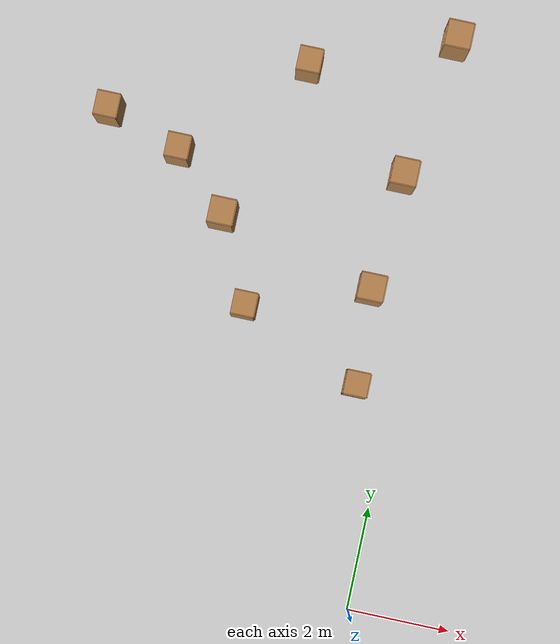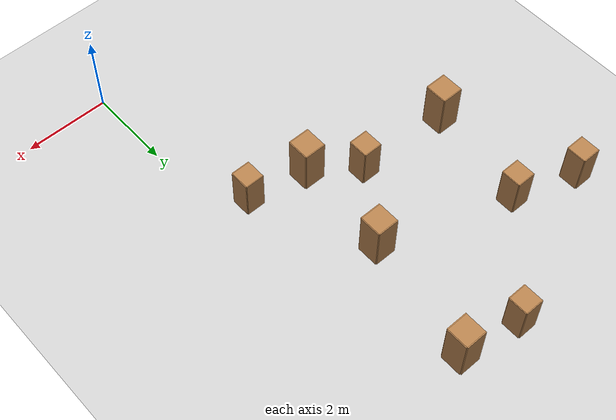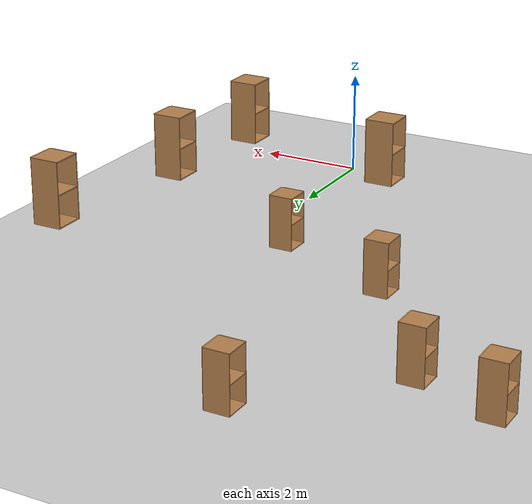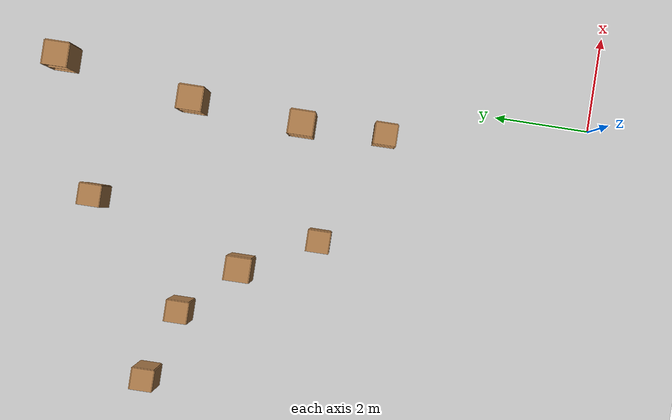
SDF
<sdf version="1.7">
 <world name="default">
  <model name="ground_plane">
   <static>1</static>
   <link name="link">
    <collision name="collision">
     <geometry><plane><normal>0 0 1</normal><size>100 100</size></plane></geometry>
     <surface><friction><ode><mu>100</mu><mu2>50</mu2></ode></friction></surface>
    </collision>
    <visual name="visual">
     <cast_shadows>0</cast_shadows>
     <geometry><plane><normal>0 0 1</normal><size>100 100</size></plane></geometry>
     <material>
      <script><uri>file://media/materials/scripts/gazebo.material</uri><name>Gazebo/Grey</name></script>
     </material>
    </visual>
   </link>
  </model>
  <model name="cabinet_0">
   <static>1</static>
   <link name="cabinet_bottom_plate">
    <inertial>
     <pose>0 0 -1 0 -0 0</pose>
     <inertia><ixx>2.05</ixx><ixy>0</ixy><ixz>0</ixz><iyy>2.05</iyy><iyz>0</iyz><izz>2.05</izz></inertia>
     <mass>25</mass>
    </inertial>
    <collision name="cabinet_bottom_plate_geom">
     <pose>0 0 0.01 0 -0 0</pose>
     <geometry><box><size>0.45 0.45 0.02</size></box></geometry>
    </collision>
    <visual name="cabinet_bottom_plate_geom_visual">
     <pose>0 0 0.01 0 -0 0</pose>
     <geometry><box><size>0.45 0.45 0.02</size></box></geometry>
     <material>
      <script><uri>file://media/materials/scripts/gazebo.material</uri><name>Gazebo/Wood</name></script>
     </material>
    </visual>
    <collision name="cabinet_bottom_plate_geom_cabinet_back_plate">
     <pose>0.235 0 0.51 0 -0 0</pose>
     <geometry><box><size>0.02 0.45 1.02</size></box></geometry>
    </collision>
    <visual name="cabinet_bottom_plate_geom_cabinet_back_plate_visual">
     <pose>0.235 0 0.51 0 -0 0</pose>
     <geometry><box><size>0.02 0.45 1.02</size></box></geometry>
     <material>
      <script><uri>file://media/materials/scripts/gazebo.material</uri><name>Gazebo/Wood</name></script>
     </material>
    </visual>
    <collision name="cabinet_bottom_plate_geom_cabinet_left_plate">
     <pose>0 0.235 0.51 0 -0 0</pose>
     <geometry><box><size>0.45 0.02 1.02</size></box></geometry>
    </collision>
    <visual name="cabinet_bottom_plate_geom_cabinet_left_plate_visual">
     <pose>0 0.235 0.51 0 -0 0</pose>
     <geometry><box><size>0.45 0.02 1.02</size></box></geometry>
     <material>
      <script><uri>file://media/materials/scripts/gazebo.material</uri><name>Gazebo/Wood</name></script>
     </material>
    </visual>
    <collision name="cabinet_bottom_plate_geom_cabinet_middle_plate">
     <pose>0 0 0.51 0 -0 0</pose>
     <geometry><box><size>0.45 0.45 0.02</size></box></geometry>
    </collision>
    <visual name="cabinet_bottom_plate_geom_cabinet_middle_plate_visual">
     <pose>0 0 0.51 0 -0 0</pose>
     <geometry><box><size>0.45 0.45 0.02</size></box></geometry>
     <material>
      <script><uri>file://media/materials/scripts/gazebo.material</uri><name>Gazebo/Wood</name></script>
     </material>
    </visual>
    <collision name="cabinet_bottom_plate_geom_cabinet_right_plate">
     <pose>0 -0.235 0.51 0 -0 0</pose>
     <geometry><box><size>0.45 0.02 1.02</size></box></geometry>
    </collision>
    <visual name="cabinet_bottom_plate_geom_cabinet_right_plate_visual">
     <pose>0 -0.235 0.51 0 -0 0</pose>
     <geometry><box><size>0.45 0.02 1.02</size></box></geometry>
     <material>
      <script><uri>file://media/materials/scripts/gazebo.material</uri><name>Gazebo/Wood</name></script>
     </material>
    </visual>
    <collision name="cabinet_bottom_plate_geom_cabinet_top_plate">
     <pose>0 0 1.01 0 -0 0</pose>
     <geometry><box><size>0.45 0.45 0.02</size></box></geometry>
    </collision>
    <visual name="cabinet_bottom_plate_geom_cabinet_top_plate_visual">
     <pose>0 0 1.01 0 -0 0</pose>
     <geometry><box><size>0.45 0.45 0.02</size></box></geometry>
     <material>
      <script><uri>file://media/materials/scripts/gazebo.material</uri><name>Gazebo/Wood</name></script>
     </material>
    </visual>
   </link>
   <pose>-3.16473 5.33398 0 0 -0 0</pose>
  </model>
  <model name="cabinet_1">
   <static>1</static>
   <link name="cabinet_bottom_plate">
    <inertial>
     <pose>0 0 -1 0 -0 0</pose>
     <inertia><ixx>2.05</ixx><ixy>0</ixy><ixz>0</ixz><iyy>2.05</iyy><iyz>0</iyz><izz>2.05</izz></inertia>
     <mass>25</mass>
    </inertial>
    <collision name="cabinet_bottom_plate_geom">
     <pose>0 0 0.01 0 -0 0</pose>
     <geometry><box><size>0.45 0.45 0.02</size></box></geometry>
    </collision>
    <visual name="cabinet_bottom_plate_geom_visual">
     <pose>0 0 0.01 0 -0 0</pose>
     <geometry><box><size>0.45 0.45 0.02</size></box></geometry>
     <material>
      <script><uri>file://media/materials/scripts/gazebo.material</uri><name>Gazebo/Wood</name></script>
     </material>
    </visual>
    <collision name="cabinet_bottom_plate_geom_cabinet_back_plate">
     <pose>0.235 0 0.51 0 -0 0</pose>
     <geometry><box><size>0.02 0.45 1.02</size></box></geometry>
    </collision>
    <visual name="cabinet_bottom_plate_geom_cabinet_back_plate_visual">
     <pose>0.235 0 0.51 0 -0 0</pose>
     <geometry><box><size>0.02 0.45 1.02</size></box></geometry>
     <material>
      <script><uri>file://media/materials/scripts/gazebo.material</uri><name>Gazebo/Wood</name></script>
     </material>
    </visual>
    <collision name="cabinet_bottom_plate_geom_cabinet_left_plate">
     <pose>0 0.235 0.51 0 -0 0</pose>
     <geometry><box><size>0.45 0.02 1.02</size></box></geometry>
    </collision>
    <visual name="cabinet_bottom_plate_geom_cabinet_left_plate_visual">
     <pose>0 0.235 0.51 0 -0 0</pose>
     <geometry><box><size>0.45 0.02 1.02</size></box></geometry>
     <material>
      <script><uri>file://media/materials/scripts/gazebo.material</uri><name>Gazebo/Wood</name></script>
     </material>
    </visual>
    <collision name="cabinet_bottom_plate_geom_cabinet_middle_plate">
     <pose>0 0 0.51 0 -0 0</pose>
     <geometry><box><size>0.45 0.45 0.02</size></box></geometry>
    </collision>
    <visual name="cabinet_bottom_plate_geom_cabinet_middle_plate_visual">
     <pose>0 0 0.51 0 -0 0</pose>
     <geometry><box><size>0.45 0.45 0.02</size></box></geometry>
     <material>
      <script><uri>file://media/materials/scripts/gazebo.material</uri><name>Gazebo/Wood</name></script>
     </material>
    </visual>
    <collision name="cabinet_bottom_plate_geom_cabinet_right_plate">
     <pose>0 -0.235 0.51 0 -0 0</pose>
     <geometry><box><size>0.45 0.02 1.02</size></box></geometry>
    </collision>
    <visual name="cabinet_bottom_plate_geom_cabinet_right_plate_visual">
     <pose>0 -0.235 0.51 0 -0 0</pose>
     <geometry><box><size>0.45 0.02 1.02</size></box></geometry>
     <material>
      <script><uri>file://media/materials/scripts/gazebo.material</uri><name>Gazebo/Wood</name></script>
     </material>
    </visual>
    <collision name="cabinet_bottom_plate_geom_cabinet_top_plate">
     <pose>0 0 1.01 0 -0 0</pose>
     <geometry><box><size>0.45 0.45 0.02</size></box></geometry>
    </collision>
    <visual name="cabinet_bottom_plate_geom_cabinet_top_plate_visual">
     <pose>0 0 1.01 0 -0 0</pose>
     <geometry><box><size>0.45 0.45 0.02</size></box></geometry>
     <material>
      <script><uri>file://media/materials/scripts/gazebo.material</uri><name>Gazebo/Wood</name></script>
     </material>
    </visual>
   </link>
   <pose>-5.03294 8.00507 0 0 -0 0</pose>
  </model>
  <model name="cabinet_2">
   <static>1</static>
   <link name="cabinet_bottom_plate">
    <inertial>
     <pose>0 0 -1 0 -0 0</pose>
     <inertia><ixx>2.05</ixx><ixy>0</ixy><ixz>0</ixz><iyy>2.05</iyy><iyz>0</iyz><izz>2.05</izz></inertia>
     <mass>25</mass>
    </inertial>
    <collision name="cabinet_bottom_plate_geom">
     <pose>0 0 0.01 0 -0 0</pose>
     <geometry><box><size>0.45 0.45 0.02</size></box></geometry>
    </collision>
    <visual name="cabinet_bottom_plate_geom_visual">
     <pose>0 0 0.01 0 -0 0</pose>
     <geometry><box><size>0.45 0.45 0.02</size></box></geometry>
     <material>
      <script><uri>file://media/materials/scripts/gazebo.material</uri><name>Gazebo/Wood</name></script>
     </material>
    </visual>
    <collision name="cabinet_bottom_plate_geom_cabinet_back_plate">
     <pose>0.235 0 0.51 0 -0 0</pose>
     <geometry><box><size>0.02 0.45 1.02</size></box></geometry>
    </collision>
    <visual name="cabinet_bottom_plate_geom_cabinet_back_plate_visual">
     <pose>0.235 0 0.51 0 -0 0</pose>
     <geometry><box><size>0.02 0.45 1.02</size></box></geometry>
     <material>
      <script><uri>file://media/materials/scripts/gazebo.material</uri><name>Gazebo/Wood</name></script>
     </material>
    </visual>
    <collision name="cabinet_bottom_plate_geom_cabinet_left_plate">
     <pose>0 0.235 0.51 0 -0 0</pose>
     <geometry><box><size>0.45 0.02 1.02</size></box></geometry>
    </collision>
    <visual name="cabinet_bottom_plate_geom_cabinet_left_plate_visual">
     <pose>0 0.235 0.51 0 -0 0</pose>
     <geometry><box><size>0.45 0.02 1.02</size></box></geometry>
     <material>
      <script><uri>file://media/materials/scripts/gazebo.material</uri><name>Gazebo/Wood</name></script>
     </material>
    </visual>
    <collision name="cabinet_bottom_plate_geom_cabinet_middle_plate">
     <pose>0 0 0.51 0 -0 0</pose>
     <geometry><box><size>0.45 0.45 0.02</size></box></geometry>
    </collision>
    <visual name="cabinet_bottom_plate_geom_cabinet_middle_plate_visual">
     <pose>0 0 0.51 0 -0 0</pose>
     <geometry><box><size>0.45 0.45 0.02</size></box></geometry>
     <material>
      <script><uri>file://media/materials/scripts/gazebo.material</uri><name>Gazebo/Wood</name></script>
     </material>
    </visual>
    <collision name="cabinet_bottom_plate_geom_cabinet_right_plate">
     <pose>0 -0.235 0.51 0 -0 0</pose>
     <geometry><box><size>0.45 0.02 1.02</size></box></geometry>
    </collision>
    <visual name="cabinet_bottom_plate_geom_cabinet_right_plate_visual">
     <pose>0 -0.235 0.51 0 -0 0</pose>
     <geometry><box><size>0.45 0.02 1.02</size></box></geometry>
     <material>
      <script><uri>file://media/materials/scripts/gazebo.material</uri><name>Gazebo/Wood</name></script>
     </material>
    </visual>
    <collision name="cabinet_bottom_plate_geom_cabinet_top_plate">
     <pose>0 0 1.01 0 -0 0</pose>
     <geometry><box><size>0.45 0.45 0.02</size></box></geometry>
    </collision>
    <visual name="cabinet_bottom_plate_geom_cabinet_top_plate_visual">
     <pose>0 0 1.01 0 -0 0</pose>
     <geometry><box><size>0.45 0.45 0.02</size></box></geometry>
     <material>
      <script><uri>file://media/materials/scripts/gazebo.material</uri><name>Gazebo/Wood</name></script>
     </material>
    </visual>
   </link>
   <pose>-0.759244 4.29261 0 0 -0 0</pose>
  </model>
  <model name="cabinet_3">
   <static>1</static>
   <link name="cabinet_bottom_plate">
    <inertial>
     <pose>0 0 -1 0 -0 0</pose>
     <inertia><ixx>2.05</ixx><ixy>0</ixy><ixz>0</ixz><iyy>2.05</iyy><iyz>0</iyz><izz>2.05</izz></inertia>
     <mass>25</mass>
    </inertial>
    <collision name="cabinet_bottom_plate_geom">
     <pose>0 0 0.01 0 -0 0</pose>
     <geometry><box><size>0.45 0.45 0.02</size></box></geometry>
    </collision>
    <visual name="cabinet_bottom_plate_geom_visual">
     <pose>0 0 0.01 0 -0 0</pose>
     <geometry><box><size>0.45 0.45 0.02</size></box></geometry>
     <material>
      <script><uri>file://media/materials/scripts/gazebo.material</uri><name>Gazebo/Wood</name></script>
     </material>
    </visual>
    <collision name="cabinet_bottom_plate_geom_cabinet_back_plate">
     <pose>0.235 0 0.51 0 -0 0</pose>
     <geometry><box><size>0.02 0.45 1.02</size></box></geometry>
    </collision>
    <visual name="cabinet_bottom_plate_geom_cabinet_back_plate_visual">
     <pose>0.235 0 0.51 0 -0 0</pose>
     <geometry><box><size>0.02 0.45 1.02</size></box></geometry>
     <material>
      <script><uri>file://media/materials/scripts/gazebo.material</uri><name>Gazebo/Wood</name></script>
     </material>
    </visual>
    <collision name="cabinet_bottom_plate_geom_cabinet_left_plate">
     <pose>0 0.235 0.51 0 -0 0</pose>
     <geometry><box><size>0.45 0.02 1.02</size></box></geometry>
    </collision>
    <visual name="cabinet_bottom_plate_geom_cabinet_left_plate_visual">
     <pose>0 0.235 0.51 0 -0 0</pose>
     <geometry><box><size>0.45 0.02 1.02</size></box></geometry>
     <material>
      <script><uri>file://media/materials/scripts/gazebo.material</uri><name>Gazebo/Wood</name></script>
     </material>
    </visual>
    <collision name="cabinet_bottom_plate_geom_cabinet_middle_plate">
     <pose>0 0 0.51 0 -0 0</pose>
     <geometry><box><size>0.45 0.45 0.02</size></box></geometry>
    </collision>
    <visual name="cabinet_bottom_plate_geom_cabinet_middle_plate_visual">
     <pose>0 0 0.51 0 -0 0</pose>
     <geometry><box><size>0.45 0.45 0.02</size></box></geometry>
     <material>
      <script><uri>file://media/materials/scripts/gazebo.material</uri><name>Gazebo/Wood</name></script>
     </material>
    </visual>
    <collision name="cabinet_bottom_plate_geom_cabinet_right_plate">
     <pose>0 -0.235 0.51 0 -0 0</pose>
     <geometry><box><size>0.45 0.02 1.02</size></box></geometry>
    </collision>
    <visual name="cabinet_bottom_plate_geom_cabinet_right_plate_visual">
     <pose>0 -0.235 0.51 0 -0 0</pose>
     <geometry><box><size>0.45 0.02 1.02</size></box></geometry>
     <material>
      <script><uri>file://media/materials/scripts/gazebo.material</uri><name>Gazebo/Wood</name></script>
     </material>
    </visual>
    <collision name="cabinet_bottom_plate_geom_cabinet_top_plate">
     <pose>0 0 1.01 0 -0 0</pose>
     <geometry><box><size>0.45 0.45 0.02</size></box></geometry>
    </collision>
    <visual name="cabinet_bottom_plate_geom_cabinet_top_plate_visual">
     <pose>0 0 1.01 0 -0 0</pose>
     <geometry><box><size>0.45 0.45 0.02</size></box></geometry>
     <material>
      <script><uri>file://media/materials/scripts/gazebo.material</uri><name>Gazebo/Wood</name></script>
     </material>
    </visual>
   </link>
   <pose>-6.52137 8.49952 0 0 -0 0</pose>
  </model>
  <model name="cabinet_clone">
   <static>1</static>
   <link name="cabinet_bottom_plate">
    <inertial>
     <pose>0 0 -1 0 -0 0</pose>
     <inertia><ixx>2.05</ixx><ixy>0</ixy><ixz>0</ixz><iyy>2.05</iyy><iyz>0</iyz><izz>2.05</izz></inertia>
     <mass>25</mass>
    </inertial>
    <collision name="cabinet_bottom_plate_geom">
     <pose>0 0 0.01 0 -0 0</pose>
     <geometry><box><size>0.45 0.45 0.02</size></box></geometry>
    </collision>
    <visual name="cabinet_bottom_plate_geom_visual">
     <pose>0 0 0.01 0 -0 0</pose>
     <geometry><box><size>0.45 0.45 0.02</size></box></geometry>
     <material>
      <script><uri>file://media/materials/scripts/gazebo.material</uri><name>Gazebo/Wood</name></script>
     </material>
    </visual>
    <collision name="cabinet_bottom_plate_geom_cabinet_back_plate">
     <pose>0.235 0 0.51 0 -0 0</pose>
     <geometry><box><size>0.02 0.45 1.02</size></box></geometry>
    </collision>
    <visual name="cabinet_bottom_plate_geom_cabinet_back_plate_visual">
     <pose>0.235 0 0.51 0 -0 0</pose>
     <geometry><box><size>0.02 0.45 1.02</size></box></geometry>
     <material>
      <script><uri>file://media/materials/scripts/gazebo.material</uri><name>Gazebo/Wood</name></script>
     </material>
    </visual>
    <collision name="cabinet_bottom_plate_geom_cabinet_left_plate">
     <pose>0 0.235 0.51 0 -0 0</pose>
     <geometry><box><size>0.45 0.02 1.02</size></box></geometry>
    </collision>
    <visual name="cabinet_bottom_plate_geom_cabinet_left_plate_visual">
     <pose>0 0.235 0.51 0 -0 0</pose>
     <geometry><box><size>0.45 0.02 1.02</size></box></geometry>
     <material>
      <script><uri>file://media/materials/scripts/gazebo.material</uri><name>Gazebo/Wood</name></script>
     </material>
    </visual>
    <collision name="cabinet_bottom_plate_geom_cabinet_middle_plate">
     <pose>0 0 0.51 0 -0 0</pose>
     <geometry><box><size>0.45 0.45 0.02</size></box></geometry>
    </collision>
    <visual name="cabinet_bottom_plate_geom_cabinet_middle_plate_visual">
     <pose>0 0 0.51 0 -0 0</pose>
     <geometry><box><size>0.45 0.45 0.02</size></box></geometry>
     <material>
      <script><uri>file://media/materials/scripts/gazebo.material</uri><name>Gazebo/Wood</name></script>
     </material>
    </visual>
    <collision name="cabinet_bottom_plate_geom_cabinet_right_plate">
     <pose>0 -0.235 0.51 0 -0 0</pose>
     <geometry><box><size>0.45 0.02 1.02</size></box></geometry>
    </collision>
    <visual name="cabinet_bottom_plate_geom_cabinet_right_plate_visual">
     <pose>0 -0.235 0.51 0 -0 0</pose>
     <geometry><box><size>0.45 0.02 1.02</size></box></geometry>
     <material>
      <script><uri>file://media/materials/scripts/gazebo.material</uri><name>Gazebo/Wood</name></script>
     </material>
    </visual>
    <collision name="cabinet_bottom_plate_geom_cabinet_top_plate">
     <pose>0 0 1.01 0 -0 0</pose>
     <geometry><box><size>0.45 0.45 0.02</size></box></geometry>
    </collision>
    <visual name="cabinet_bottom_plate_geom_cabinet_top_plate_visual">
     <pose>0 0 1.01 0 -0 0</pose>
     <geometry><box><size>0.45 0.45 0.02</size></box></geometry>
     <material>
      <script><uri>file://media/materials/scripts/gazebo.material</uri><name>Gazebo/Wood</name></script>
     </material>
    </visual>
   </link>
   <pose>-2.92147 10.1436 0 0 -0 0</pose>
  </model>
  <model name="cabinet_4">
   <static>1</static>
   <link name="cabinet_bottom_plate">
    <inertial>
     <pose>0 0 -1 0 -0 0</pose>
     <inertia><ixx>2.05</ixx><ixy>0</ixy><ixz>0</ixz><iyy>2.05</iyy><iyz>0</iyz><izz>2.05</izz></inertia>
     <mass>25</mass>
    </inertial>
    <collision name="cabinet_bottom_plate_geom">
     <pose>0 0 0.01 0 -0 0</pose>
     <geometry><box><size>0.45 0.45 0.02</size></box></geometry>
    </collision>
    <visual name="cabinet_bottom_plate_geom_visual">
     <pose>0 0 0.01 0 -0 0</pose>
     <geometry><box><size>0.45 0.45 0.02</size></box></geometry>
     <material>
      <script><uri>file://media/materials/scripts/gazebo.material</uri><name>Gazebo/Wood</name></script>
     </material>
    </visual>
    <collision name="cabinet_bottom_plate_geom_cabinet_back_plate">
     <pose>0.235 0 0.51 0 -0 0</pose>
     <geometry><box><size>0.02 0.45 1.02</size></box></geometry>
    </collision>
    <visual name="cabinet_bottom_plate_geom_cabinet_back_plate_visual">
     <pose>0.235 0 0.51 0 -0 0</pose>
     <geometry><box><size>0.02 0.45 1.02</size></box></geometry>
     <material>
      <script><uri>file://media/materials/scripts/gazebo.material</uri><name>Gazebo/Wood</name></script>
     </material>
    </visual>
    <collision name="cabinet_bottom_plate_geom_cabinet_left_plate">
     <pose>0 0.235 0.51 0 -0 0</pose>
     <geometry><box><size>0.45 0.02 1.02</size></box></geometry>
    </collision>
    <visual name="cabinet_bottom_plate_geom_cabinet_left_plate_visual">
     <pose>0 0.235 0.51 0 -0 0</pose>
     <geometry><box><size>0.45 0.02 1.02</size></box></geometry>
     <material>
      <script><uri>file://media/materials/scripts/gazebo.material</uri><name>Gazebo/Wood</name></script>
     </material>
    </visual>
    <collision name="cabinet_bottom_plate_geom_cabinet_middle_plate">
     <pose>0 0 0.51 0 -0 0</pose>
     <geometry><box><size>0.45 0.45 0.02</size></box></geometry>
    </collision>
    <visual name="cabinet_bottom_plate_geom_cabinet_middle_plate_visual">
     <pose>0 0 0.51 0 -0 0</pose>
     <geometry><box><size>0.45 0.45 0.02</size></box></geometry>
     <material>
      <script><uri>file://media/materials/scripts/gazebo.material</uri><name>Gazebo/Wood</name></script>
     </material>
    </visual>
    <collision name="cabinet_bottom_plate_geom_cabinet_right_plate">
     <pose>0 -0.235 0.51 0 -0 0</pose>
     <geometry><box><size>0.45 0.02 1.02</size></box></geometry>
    </collision>
    <visual name="cabinet_bottom_plate_geom_cabinet_right_plate_visual">
     <pose>0 -0.235 0.51 0 -0 0</pose>
     <geometry><box><size>0.45 0.02 1.02</size></box></geometry>
     <material>
      <script><uri>file://media/materials/scripts/gazebo.material</uri><name>Gazebo/Wood</name></script>
     </material>
    </visual>
    <collision name="cabinet_bottom_plate_geom_cabinet_top_plate">
     <pose>0 0 1.01 0 -0 0</pose>
     <geometry><box><size>0.45 0.45 0.02</size></box></geometry>
    </collision>
    <visual name="cabinet_bottom_plate_geom_cabinet_top_plate_visual">
     <pose>0 0 1.01 0 -0 0</pose>
     <geometry><box><size>0.45 0.45 0.02</size></box></geometry>
     <material>
      <script><uri>file://media/materials/scripts/gazebo.material</uri><name>Gazebo/Wood</name></script>
     </material>
    </visual>
   </link>
   <pose>-0.807794 8.02301 2.58949 0 -0 0</pose>
  </model>
  <model name="cabinet_4_clone_0">
   <static>1</static>
   <link name="cabinet_bottom_plate">
    <inertial>
     <pose>0 0 -1 0 -0 0</pose>
     <inertia><ixx>2.05</ixx><ixy>0</ixy><ixz>0</ixz><iyy>2.05</iyy><iyz>0</iyz><izz>2.05</izz></inertia>
     <mass>25</mass>
    </inertial>
    <collision name="cabinet_bottom_plate_geom">
     <pose>0 0 0.01 0 -0 0</pose>
     <geometry><box><size>0.45 0.45 0.02</size></box></geometry>
    </collision>
    <visual name="cabinet_bottom_plate_geom_visual">
     <pose>0 0 0.01 0 -0 0</pose>
     <geometry><box><size>0.45 0.45 0.02</size></box></geometry>
     <material>
      <script><uri>file://media/materials/scripts/gazebo.material</uri><name>Gazebo/Wood</name></script>
     </material>
    </visual>
    <collision name="cabinet_bottom_plate_geom_cabinet_back_plate">
     <pose>0.235 0 0.51 0 -0 0</pose>
     <geometry><box><size>0.02 0.45 1.02</size></box></geometry>
    </collision>
    <visual name="cabinet_bottom_plate_geom_cabinet_back_plate_visual">
     <pose>0.235 0 0.51 0 -0 0</pose>
     <geometry><box><size>0.02 0.45 1.02</size></box></geometry>
     <material>
      <script><uri>file://media/materials/scripts/gazebo.material</uri><name>Gazebo/Wood</name></script>
     </material>
    </visual>
    <collision name="cabinet_bottom_plate_geom_cabinet_left_plate">
     <pose>0 0.235 0.51 0 -0 0</pose>
     <geometry><box><size>0.45 0.02 1.02</size></box></geometry>
    </collision>
    <visual name="cabinet_bottom_plate_geom_cabinet_left_plate_visual">
     <pose>0 0.235 0.51 0 -0 0</pose>
     <geometry><box><size>0.45 0.02 1.02</size></box></geometry>
     <material>
      <script><uri>file://media/materials/scripts/gazebo.material</uri><name>Gazebo/Wood</name></script>
     </material>
    </visual>
    <collision name="cabinet_bottom_plate_geom_cabinet_middle_plate">
     <pose>0 0 0.51 0 -0 0</pose>
     <geometry><box><size>0.45 0.45 0.02</size></box></geometry>
    </collision>
    <visual name="cabinet_bottom_plate_geom_cabinet_middle_plate_visual">
     <pose>0 0 0.51 0 -0 0</pose>
     <geometry><box><size>0.45 0.45 0.02</size></box></geometry>
     <material>
      <script><uri>file://media/materials/scripts/gazebo.material</uri><name>Gazebo/Wood</name></script>
     </material>
    </visual>
    <collision name="cabinet_bottom_plate_geom_cabinet_right_plate">
     <pose>0 -0.235 0.51 0 -0 0</pose>
     <geometry><box><size>0.45 0.02 1.02</size></box></geometry>
    </collision>
    <visual name="cabinet_bottom_plate_geom_cabinet_right_plate_visual">
     <pose>0 -0.235 0.51 0 -0 0</pose>
     <geometry><box><size>0.45 0.02 1.02</size></box></geometry>
     <material>
      <script><uri>file://media/materials/scripts/gazebo.material</uri><name>Gazebo/Wood</name></script>
     </material>
    </visual>
    <collision name="cabinet_bottom_plate_geom_cabinet_top_plate">
     <pose>0 0 1.01 0 -0 0</pose>
     <geometry><box><size>0.45 0.45 0.02</size></box></geometry>
    </collision>
    <visual name="cabinet_bottom_plate_geom_cabinet_top_plate_visual">
     <pose>0 0 1.01 0 -0 0</pose>
     <geometry><box><size>0.45 0.45 0.02</size></box></geometry>
     <material>
      <script><uri>file://media/materials/scripts/gazebo.material</uri><name>Gazebo/Wood</name></script>
     </material>
    </visual>
   </link>
   <pose>-3.79825 6.68311 2.58949 0 -0 0</pose>
  </model>
  <model name="cabinet_4_clone_2">
   <static>1</static>
   <link name="cabinet_bottom_plate">
    <inertial>
     <pose>0 0 -1 0 -0 0</pose>
     <inertia><ixx>2.05</ixx><ixy>0</ixy><ixz>0</ixz><iyy>2.05</iyy><iyz>0</iyz><izz>2.05</izz></inertia>
     <mass>25</mass>
    </inertial>
    <collision name="cabinet_bottom_plate_geom">
     <pose>0 0 0.01 0 -0 0</pose>
     <geometry><box><size>0.45 0.45 0.02</size></box></geometry>
    </collision>
    <visual name="cabinet_bottom_plate_geom_visual">
     <pose>0 0 0.01 0 -0 0</pose>
     <geometry><box><size>0.45 0.45 0.02</size></box></geometry>
     <material>
      <script><uri>file://media/materials/scripts/gazebo.material</uri><name>Gazebo/Wood</name></script>
     </material>
    </visual>
    <collision name="cabinet_bottom_plate_geom_cabinet_back_plate">
     <pose>0.235 0 0.51 0 -0 0</pose>
     <geometry><box><size>0.02 0.45 1.02</size></box></geometry>
    </collision>
    <visual name="cabinet_bottom_plate_geom_cabinet_back_plate_visual">
     <pose>0.235 0 0.51 0 -0 0</pose>
     <geometry><box><size>0.02 0.45 1.02</size></box></geometry>
     <material>
      <script><uri>file://media/materials/scripts/gazebo.material</uri><name>Gazebo/Wood</name></script>
     </material>
    </visual>
    <collision name="cabinet_bottom_plate_geom_cabinet_left_plate">
     <pose>0 0.235 0.51 0 -0 0</pose>
     <geometry><box><size>0.45 0.02 1.02</size></box></geometry>
    </collision>
    <visual name="cabinet_bottom_plate_geom_cabinet_left_plate_visual">
     <pose>0 0.235 0.51 0 -0 0</pose>
     <geometry><box><size>0.45 0.02 1.02</size></box></geometry>
     <material>
      <script><uri>file://media/materials/scripts/gazebo.material</uri><name>Gazebo/Wood</name></script>
     </material>
    </visual>
    <collision name="cabinet_bottom_plate_geom_cabinet_middle_plate">
     <pose>0 0 0.51 0 -0 0</pose>
     <geometry><box><size>0.45 0.45 0.02</size></box></geometry>
    </collision>
    <visual name="cabinet_bottom_plate_geom_cabinet_middle_plate_visual">
     <pose>0 0 0.51 0 -0 0</pose>
     <geometry><box><size>0.45 0.45 0.02</size></box></geometry>
     <material>
      <script><uri>file://media/materials/scripts/gazebo.material</uri><name>Gazebo/Wood</name></script>
     </material>
    </visual>
    <collision name="cabinet_bottom_plate_geom_cabinet_right_plate">
     <pose>0 -0.235 0.51 0 -0 0</pose>
     <geometry><box><size>0.45 0.02 1.02</size></box></geometry>
    </collision>
    <visual name="cabinet_bottom_plate_geom_cabinet_right_plate_visual">
     <pose>0 -0.235 0.51 0 -0 0</pose>
     <geometry><box><size>0.45 0.02 1.02</size></box></geometry>
     <material>
      <script><uri>file://media/materials/scripts/gazebo.material</uri><name>Gazebo/Wood</name></script>
     </material>
    </visual>
    <collision name="cabinet_bottom_plate_geom_cabinet_top_plate">
     <pose>0 0 1.01 0 -0 0</pose>
     <geometry><box><size>0.45 0.45 0.02</size></box></geometry>
    </collision>
    <visual name="cabinet_bottom_plate_geom_cabinet_top_plate_visual">
     <pose>0 0 1.01 0 -0 0</pose>
     <geometry><box><size>0.45 0.45 0.02</size></box></geometry>
     <material>
      <script><uri>file://media/materials/scripts/gazebo.material</uri><name>Gazebo/Wood</name></script>
     </material>
    </visual>
   </link>
   <pose>-0.951935 5.92676 2.58949 0 -0 0</pose>
  </model>
  <model name="cabinet_4_clone_3">
   <static>1</static>
   <link name="cabinet_bottom_plate">
    <inertial>
     <pose>0 0 -1 0 -0 0</pose>
     <inertia><ixx>2.05</ixx><ixy>0</ixy><ixz>0</ixz><iyy>2.05</iyy><iyz>0</iyz><izz>2.05</izz></inertia>
     <mass>25</mass>
    </inertial>
    <collision name="cabinet_bottom_plate_geom">
     <pose>0 0 0.01 0 -0 0</pose>
     <geometry><box><size>0.45 0.45 0.02</size></box></geometry>
    </collision>
    <visual name="cabinet_bottom_plate_geom_visual">
     <pose>0 0 0.01 0 -0 0</pose>
     <geometry><box><size>0.45 0.45 0.02</size></box></geometry>
     <material>
      <script><uri>file://media/materials/scripts/gazebo.material</uri><name>Gazebo/Wood</name></script>
     </material>
    </visual>
    <collision name="cabinet_bottom_plate_geom_cabinet_back_plate">
     <pose>0.235 0 0.51 0 -0 0</pose>
     <geometry><box><size>0.02 0.45 1.02</size></box></geometry>
    </collision>
    <visual name="cabinet_bottom_plate_geom_cabinet_back_plate_visual">
     <pose>0.235 0 0.51 0 -0 0</pose>
     <geometry><box><size>0.02 0.45 1.02</size></box></geometry>
     <material>
      <script><uri>file://media/materials/scripts/gazebo.material</uri><name>Gazebo/Wood</name></script>
     </material>
    </visual>
    <collision name="cabinet_bottom_plate_geom_cabinet_left_plate">
     <pose>0 0.235 0.51 0 -0 0</pose>
     <geometry><box><size>0.45 0.02 1.02</size></box></geometry>
    </collision>
    <visual name="cabinet_bottom_plate_geom_cabinet_left_plate_visual">
     <pose>0 0.235 0.51 0 -0 0</pose>
     <geometry><box><size>0.45 0.02 1.02</size></box></geometry>
     <material>
      <script><uri>file://media/materials/scripts/gazebo.material</uri><name>Gazebo/Wood</name></script>
     </material>
    </visual>
    <collision name="cabinet_bottom_plate_geom_cabinet_middle_plate">
     <pose>0 0 0.51 0 -0 0</pose>
     <geometry><box><size>0.45 0.45 0.02</size></box></geometry>
    </collision>
    <visual name="cabinet_bottom_plate_geom_cabinet_middle_plate_visual">
     <pose>0 0 0.51 0 -0 0</pose>
     <geometry><box><size>0.45 0.45 0.02</size></box></geometry>
     <material>
      <script><uri>file://media/materials/scripts/gazebo.material</uri><name>Gazebo/Wood</name></script>
     </material>
    </visual>
    <collision name="cabinet_bottom_plate_geom_cabinet_right_plate">
     <pose>0 -0.235 0.51 0 -0 0</pose>
     <geometry><box><size>0.45 0.02 1.02</size></box></geometry>
    </collision>
    <visual name="cabinet_bottom_plate_geom_cabinet_right_plate_visual">
     <pose>0 -0.235 0.51 0 -0 0</pose>
     <geometry><box><size>0.45 0.02 1.02</size></box></geometry>
     <material>
      <script><uri>file://media/materials/scripts/gazebo.material</uri><name>Gazebo/Wood</name></script>
     </material>
    </visual>
    <collision name="cabinet_bottom_plate_geom_cabinet_top_plate">
     <pose>0 0 1.01 0 -0 0</pose>
     <geometry><box><size>0.45 0.45 0.02</size></box></geometry>
    </collision>
    <visual name="cabinet_bottom_plate_geom_cabinet_top_plate_visual">
     <pose>0 0 1.01 0 -0 0</pose>
     <geometry><box><size>0.45 0.45 0.02</size></box></geometry>
     <material>
      <script><uri>file://media/materials/scripts/gazebo.material</uri><name>Gazebo/Wood</name></script>
     </material>
    </visual>
   </link>
   <pose>-0.377685 10.5835 2.58949 0 -0 0</pose>
  </model>
 </world>
</sdf>
